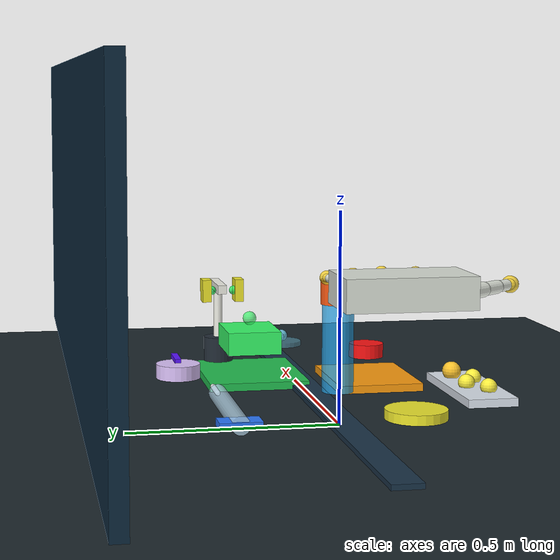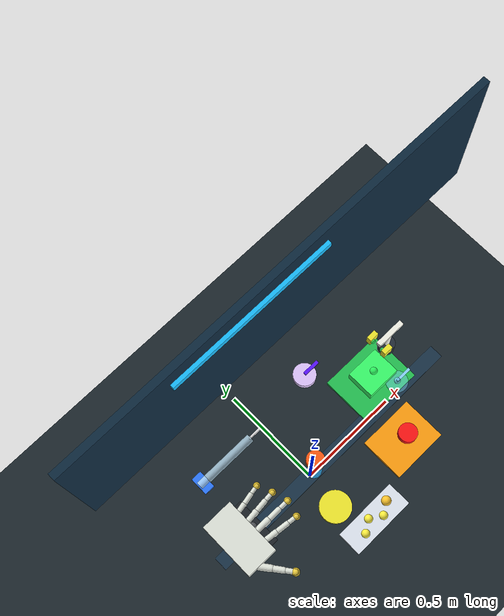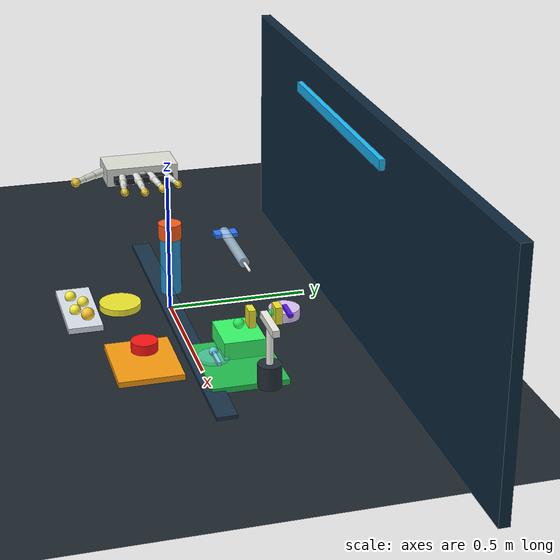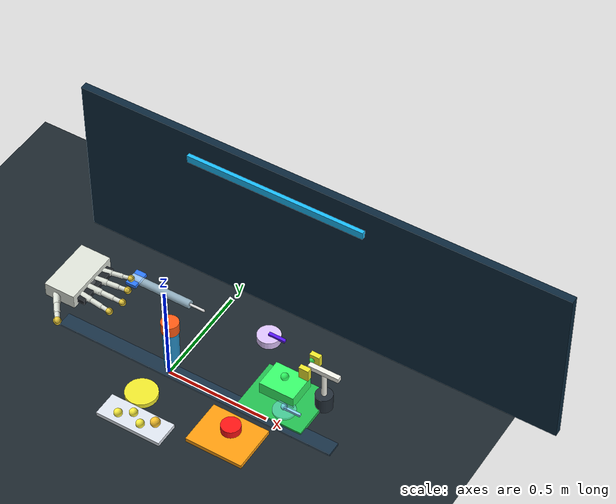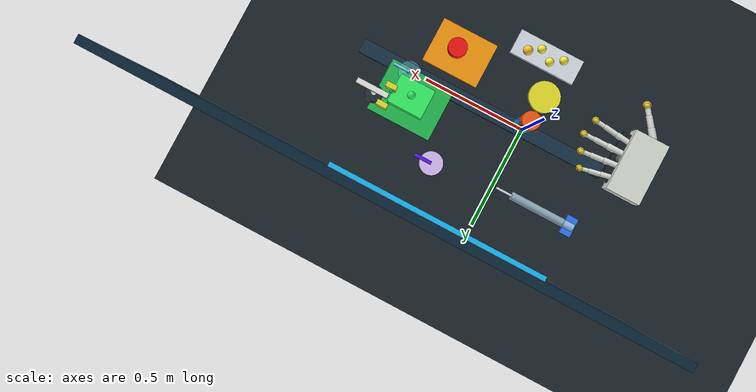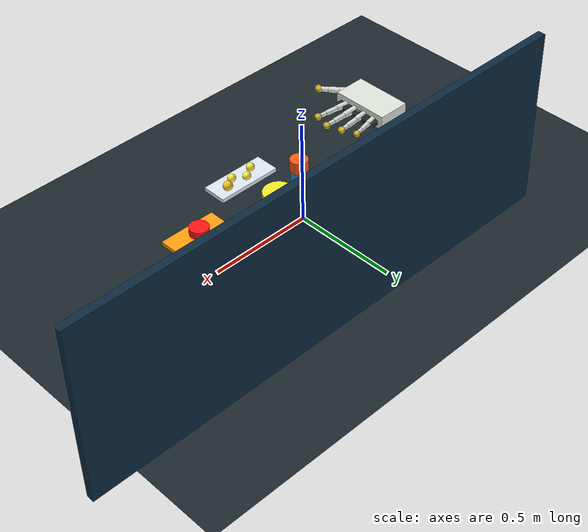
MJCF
<mujoco model="guardian_apothecary_dextriage">
  <compiler angle="radian"/>
  <option timestep="0.002" integrator="implicitfast" gravity="0 0 -9.81"/>
  <visual>
    <global offwidth="1280" offheight="720"/>
    <headlight diffuse="0.55 0.55 0.55" ambient="0.22 0.22 0.22"/>
  </visual>
  <asset>
    <texture name="floor_tex" type="2d" builtin="checker" width="256" height="256" rgb1="0.08 0.11 0.13" rgb2="0.15 0.20 0.23"/>
    <material name="floor_mat" texture="floor_tex" texrepeat="8 8" reflectance="0.18"/>
    <material name="skin" rgba="0.88 0.90 0.86 1"/>
    <material name="joint" rgba="0.12 0.14 0.16 1"/>
    <material name="vial" rgba="0.20 0.72 1.00 0.78"/>
    <material name="cap" rgba="1.00 0.36 0.08 1"/>
    <material name="pod" rgba="0.22 1.00 0.42 1"/>
    <material name="receiver" rgba="0.96 0.96 0.92 1"/>
    <material name="verifier" rgba="0.55 0.85 1.00 1"/>
  </asset>
  <default>
    <geom solref="0.008 1" solimp="0.92 0.98 0.006" friction="1.4 0.08 0.02"/>
    <joint damping="1.6" armature="0.02" limited="true"/>
    <position kp="48" ctrllimited="true"/>
  </default>
  <worldbody>
    <light name="key_light" pos="-1.1 -1.2 2.4" dir="0.45 0.55 -1" diffuse="0.9 0.86 0.78"/>
    <light name="rim_light" pos="0.9 1.0 1.5" dir="-0.5 -0.35 -1" diffuse="0.35 0.55 0.95"/>
    <geom name="floor" type="plane" size="1.4 1.0 0.02" material="floor_mat"/>
    <geom name="backdrop_wall" type="box" pos="0.40 0.58 0.43" size="1.20 0.018 0.42" rgba="0.05 0.16 0.24 1"/>
    <geom name="triage_light_bar" type="box" pos="0.20 0.555 0.72" size="0.44 0.012 0.018" rgba="0.10 0.75 1.00 1"/>
    <geom name="route_line" type="box" pos="0.14 0 0.012" size="0.70 0.035 0.006" rgba="0.10 0.20 0.28 1"/>
    <geom name="sterile_pod_pad" type="box" pos="0.52 0.12 0.018" size="0.16 0.13 0.010" rgba="0.14 0.76 0.32 1"/>
    <geom name="quarantine_pad" type="box" pos="0.42 -0.18 0.018" size="0.14 0.11 0.010" rgba="1.00 0.62 0.06 1"/>
    <geom name="scan_marker" type="cylinder" pos="-0.02 -0.18 0.024" size="0.075 0.012" rgba="0.95 0.92 0.18 1"/>
    <camera name="hero" pos="0.95 -1.05 0.74" xyaxes="0.78 0.63 0 -0.23 0.29 0.93"/>

    <body name="palm" pos="-0.44 -0.02 0.38">
      <freejoint name="palm_root"/>
      <geom name="palm_geom" type="box" size="0.075 0.135 0.034" material="skin"/>
      <geom name="palm_plate" type="box" pos="0.02 0 -0.006" size="0.09 0.11 0.012" material="joint"/>
      <site name="palm_frame" pos="0.075 0 0" size="0.018" rgba="1 1 1 0.25"/>

      <body name="thumb_base" pos="-0.02 -0.13 -0.005" euler="0 0 -0.92">
        <joint name="thumb_abd" type="hinge" axis="0 0 1" range="-1.25 0.85"/>
        <geom name="thumb_base_geom" type="capsule" fromto="0 0 0 0.052 0 0" size="0.016" material="skin"/>
        <body name="thumb_mid" pos="0.052 0 0">
          <joint name="thumb_flex" type="hinge" axis="0 0 1" range="-1.35 0.80"/>
          <geom name="thumb_mid_geom" type="capsule" fromto="0 0 0 0.052 0 0" size="0.014" material="skin"/>
          <body name="thumb_tip_body" pos="0.052 0 0">
            <joint name="thumb_tip_joint" type="hinge" axis="0 0 1" range="-1.15 0.65"/>
            <geom name="thumb_tip_geom" type="capsule" fromto="0 0 0 0.048 0 0" size="0.012" material="skin"/>
            <site name="thumb_tip" pos="0.050 0 0" size="0.018" rgba="1 0.85 0.20 0.85"/>
          </body>
        </body>
      </body>

      <body name="index_base" pos="0.055 -0.075 0" euler="0 0 -0.12">
        <joint name="index_abd" type="hinge" axis="0 0 1" range="-0.65 0.65"/>
        <geom name="index_base_geom" type="capsule" fromto="0 0 0 0.070 0 0" size="0.014" material="skin"/>
        <body name="index_mid" pos="0.070 0 0">
          <joint name="index_flex" type="hinge" axis="0 0 1" range="-1.35 0.55"/>
          <geom name="index_mid_geom" type="capsule" fromto="0 0 0 0.060 0 0" size="0.012" material="skin"/>
          <body name="index_tip_body" pos="0.060 0 0">
            <joint name="index_tip_joint" type="hinge" axis="0 0 1" range="-1.20 0.45"/>
            <geom name="index_tip_geom" type="capsule" fromto="0 0 0 0.047 0 0" size="0.010" material="skin"/>
            <site name="index_tip" pos="0.048 0 0" size="0.016" rgba="1 0.85 0.20 0.85"/>
          </body>
        </body>
      </body>

      <body name="middle_base" pos="0.060 -0.025 0">
        <joint name="middle_abd" type="hinge" axis="0 0 1" range="-0.65 0.65"/>
        <geom name="middle_base_geom" type="capsule" fromto="0 0 0 0.076 0 0" size="0.015" material="skin"/>
        <body name="middle_mid" pos="0.076 0 0">
          <joint name="middle_flex" type="hinge" axis="0 0 1" range="-1.35 0.55"/>
          <geom name="middle_mid_geom" type="capsule" fromto="0 0 0 0.064 0 0" size="0.012" material="skin"/>
          <body name="middle_tip_body" pos="0.064 0 0">
            <joint name="middle_tip_joint" type="hinge" axis="0 0 1" range="-1.20 0.45"/>
            <geom name="middle_tip_geom" type="capsule" fromto="0 0 0 0.050 0 0" size="0.010" material="skin"/>
            <site name="middle_tip" pos="0.050 0 0" size="0.016" rgba="1 0.85 0.20 0.85"/>
          </body>
        </body>
      </body>

      <body name="ring_base" pos="0.057 0.027 0" euler="0 0 0.10">
        <joint name="ring_abd" type="hinge" axis="0 0 1" range="-0.65 0.65"/>
        <geom name="ring_base_geom" type="capsule" fromto="0 0 0 0.068 0 0" size="0.014" material="skin"/>
        <body name="ring_mid" pos="0.068 0 0">
          <joint name="ring_flex" type="hinge" axis="0 0 1" range="-1.35 0.55"/>
          <geom name="ring_mid_geom" type="capsule" fromto="0 0 0 0.058 0 0" size="0.012" material="skin"/>
          <body name="ring_tip_body" pos="0.058 0 0">
            <joint name="ring_tip_joint" type="hinge" axis="0 0 1" range="-1.20 0.45"/>
            <geom name="ring_tip_geom" type="capsule" fromto="0 0 0 0.046 0 0" size="0.010" material="skin"/>
            <site name="ring_tip" pos="0.047 0 0" size="0.016" rgba="1 0.85 0.20 0.85"/>
          </body>
        </body>
      </body>

      <body name="little_base" pos="0.050 0.078 0" euler="0 0 0.20">
        <joint name="little_abd" type="hinge" axis="0 0 1" range="-0.65 0.65"/>
        <geom name="little_base_geom" type="capsule" fromto="0 0 0 0.060 0 0" size="0.013" material="skin"/>
        <body name="little_mid" pos="0.060 0 0">
          <joint name="little_flex" type="hinge" axis="0 0 1" range="-1.35 0.55"/>
          <geom name="little_mid_geom" type="capsule" fromto="0 0 0 0.052 0 0" size="0.011" material="skin"/>
          <body name="little_tip_body" pos="0.052 0 0">
            <joint name="little_tip_joint" type="hinge" axis="0 0 1" range="-1.20 0.45"/>
            <geom name="little_tip_geom" type="capsule" fromto="0 0 0 0.042 0 0" size="0.009" material="skin"/>
            <site name="little_tip" pos="0.043 0 0" size="0.015" rgba="1 0.85 0.20 0.85"/>
          </body>
        </body>
      </body>
    </body>

    <body name="vial" pos="0.02 0 0.18">
      <freejoint name="vial_root"/>
      <geom name="vial_body" type="cylinder" size="0.037 0.105" material="vial" mass="0.09"/>
      <site name="vial_frame" pos="0 0 0.05" size="0.014" rgba="0.1 0.8 1 0.7"/>
    </body>
    <body name="cap" pos="0.02 0 0.31">
      <freejoint name="cap_root"/>
      <geom name="cap_body" type="cylinder" size="0.041 0.028" material="cap" mass="0.025"/>
      <site name="cap_frame" pos="0 0 0" size="0.012" rgba="1 0.35 0.05 0.8"/>
    </body>
    <body name="sterile_pod" pos="0.52 0.12 0.115">
      <geom name="pod_wall" type="box" size="0.085 0.070 0.030" material="pod"/>
      <site name="pod_center" pos="0 0 0.055" size="0.018" rgba="0.2 1 0.4 0.7"/>
    </body>
    <body name="receiver_robot" pos="0.68 0.18 0.055">
      <geom name="receiver_base" type="cylinder" size="0.040 0.040" rgba="0.14 0.18 0.22 1"/>
      <geom name="receiver_post" type="capsule" fromto="0 0 0.02 0 0 0.17" size="0.012" material="receiver"/>
      <body name="receiver_carriage" pos="0 0 0.18">
        <joint name="receiver_carriage_slide" type="slide" axis="-1 0 0" range="0 0.080" damping="9"/>
        <geom name="receiver_crossbar" type="box" size="0.075 0.012 0.012" material="receiver"/>
        <body name="receiver_left_clamp" pos="-0.070 0.044 0">
          <joint name="receiver_left_slide" type="slide" axis="0 -1 0" range="0 0.038" damping="10"/>
          <geom name="receiver_left_pad" type="box" size="0.024 0.012 0.030" rgba="0.95 0.92 0.18 1"/>
          <site name="receiver_touch_left" pos="-0.010 -0.014 0" size="0.012" rgba="0.22 1.00 0.42 0.85"/>
        </body>
        <body name="receiver_right_clamp" pos="-0.070 -0.044 0">
          <joint name="receiver_right_slide" type="slide" axis="0 1 0" range="0 0.038" damping="10"/>
          <geom name="receiver_right_pad" type="box" size="0.024 0.012 0.030" rgba="0.95 0.92 0.18 1"/>
          <site name="receiver_touch_right" pos="-0.010 0.014 0" size="0.012" rgba="0.22 1.00 0.42 0.85"/>
        </body>
      </body>
    </body>
    <body name="verifier_scanner" pos="0.58 0.02 0.090">
      <joint name="verifier_gate_hinge" type="hinge" axis="0 0 1" range="0 1.5708" damping="2"/>
      <geom name="verifier_ring" type="cylinder" size="0.052 0.006" rgba="0.50 0.88 1.00 0.42"/>
      <geom name="verifier_pointer" type="box" pos="0.040 0 0.014" size="0.040 0.006 0.006" material="verifier"/>
      <site name="verifier_scan_site" pos="0 0 0.020" size="0.015" rgba="0.50 0.88 1.00 0.85"/>
    </body>
    <body name="audit_button" pos="0.44 -0.18 0.090">
      <joint name="audit_button_slide" type="slide" axis="0 0 -1" range="0 0.040" damping="8"/>
      <geom name="audit_button_geom" type="cylinder" size="0.045 0.018" rgba="1 0.08 0.08 1"/>
    </body>
    <body name="blister_pack" pos="0.06 -0.34 0.060">
      <geom name="blister_tray" type="box" size="0.16 0.060 0.010" rgba="0.88 0.91 0.95 1"/>
      <geom name="pill_A" type="sphere" pos="-0.075 -0.018 0.020" size="0.020" rgba="1.0 0.95 0.25 1"/>
      <geom name="pill_B" type="sphere" pos="-0.020 0.018 0.020" size="0.020" rgba="1.0 0.95 0.25 1"/>
      <geom name="pill_C" type="sphere" pos="0.038 -0.018 0.020" size="0.020" rgba="1.0 0.95 0.25 1"/>
      <body name="blister_press_pad" pos="0.092 0.018 0.026">
        <joint name="blister_press_slide" type="slide" axis="0 0 -1" range="0 0.035" damping="10"/>
        <geom name="blister_press_geom" type="sphere" size="0.023" rgba="1.0 0.78 0.18 1"/>
      </body>
    </body>
    <body name="syringe" pos="-0.24 0.30 0.105">
      <geom name="syringe_barrel" type="cylinder" euler="0 1.5708 0" size="0.020 0.155" rgba="0.78 0.92 1.0 0.75"/>
      <geom name="syringe_tip" type="capsule" fromto="0.155 0 0 0.225 0 0" size="0.006" rgba="0.9 0.9 0.9 1"/>
      <body name="syringe_plunger" pos="-0.135 0 0">
        <joint name="syringe_plunger_slide" type="slide" axis="1 0 0" range="0 0.060" damping="9"/>
        <geom name="syringe_plunger_geom" type="box" size="0.026 0.045 0.008" rgba="0.18 0.48 1.0 1"/>
      </body>
    </body>
    <body name="dose_dial" pos="0.30 0.34 0.080">
      <joint name="dose_dial_hinge" type="hinge" axis="0 0 1" range="0 1.5708" damping="2"/>
      <geom name="dose_dial_knob" type="cylinder" size="0.055 0.018" rgba="0.88 0.78 1.0 1"/>
      <geom name="dose_dial_pointer" type="box" pos="0.042 0 0.022" size="0.042 0.008 0.006" rgba="0.36 0.08 1.0 1"/>
    </body>
  </worldbody>
  <actuator>
    <position name="thumb_abd_act" joint="thumb_abd" ctrlrange="-1.25 0.85"/>
    <position name="thumb_flex_act" joint="thumb_flex" ctrlrange="-1.35 0.80"/>
    <position name="thumb_tip_act" joint="thumb_tip_joint" ctrlrange="-1.15 0.65"/>
    <position name="index_abd_act" joint="index_abd" ctrlrange="-0.65 0.65"/>
    <position name="index_flex_act" joint="index_flex" ctrlrange="-1.35 0.55"/>
    <position name="index_tip_act" joint="index_tip_joint" ctrlrange="-1.20 0.45"/>
    <position name="middle_abd_act" joint="middle_abd" ctrlrange="-0.65 0.65"/>
    <position name="middle_flex_act" joint="middle_flex" ctrlrange="-1.35 0.55"/>
    <position name="middle_tip_act" joint="middle_tip_joint" ctrlrange="-1.20 0.45"/>
    <position name="ring_abd_act" joint="ring_abd" ctrlrange="-0.65 0.65"/>
    <position name="ring_flex_act" joint="ring_flex" ctrlrange="-1.35 0.55"/>
    <position name="ring_tip_act" joint="ring_tip_joint" ctrlrange="-1.20 0.45"/>
    <position name="little_abd_act" joint="little_abd" ctrlrange="-0.65 0.65"/>
    <position name="little_flex_act" joint="little_flex" ctrlrange="-1.35 0.55"/>
    <position name="little_tip_act" joint="little_tip_joint" ctrlrange="-1.20 0.45"/>
    <position name="audit_button_act" joint="audit_button_slide" ctrlrange="0 0.040"/>
    <position name="blister_press_act" joint="blister_press_slide" ctrlrange="0 0.035"/>
    <position name="syringe_plunger_act" joint="syringe_plunger_slide" ctrlrange="0 0.060"/>
    <position name="dose_dial_act" joint="dose_dial_hinge" ctrlrange="0 1.5708"/>
    <position name="receiver_carriage_act" joint="receiver_carriage_slide" ctrlrange="0 0.080"/>
    <position name="receiver_left_act" joint="receiver_left_slide" ctrlrange="0 0.038"/>
    <position name="receiver_right_act" joint="receiver_right_slide" ctrlrange="0 0.038"/>
    <position name="verifier_gate_act" joint="verifier_gate_hinge" ctrlrange="0 1.5708"/>
  </actuator>
  <sensor>
    <touch name="touch_thumb" site="thumb_tip"/>
    <touch name="touch_index" site="index_tip"/>
    <touch name="touch_middle" site="middle_tip"/>
    <touch name="touch_ring" site="ring_tip"/>
    <touch name="touch_little" site="little_tip"/>
    <touch name="receiver_touch_left" site="receiver_touch_left"/>
    <touch name="receiver_touch_right" site="receiver_touch_right"/>
    <framepos name="palm_pos" objtype="site" objname="palm_frame"/>
    <framepos name="vial_pos" objtype="site" objname="vial_frame"/>
    <framepos name="cap_pos" objtype="site" objname="cap_frame"/>
    <framepos name="verifier_scan_pos" objtype="site" objname="verifier_scan_site"/>
    <jointpos name="receiver_carriage_depth" joint="receiver_carriage_slide"/>
    <jointpos name="receiver_left_depth" joint="receiver_left_slide"/>
    <jointpos name="receiver_right_depth" joint="receiver_right_slide"/>
    <jointpos name="verifier_gate_angle" joint="verifier_gate_hinge"/>
    <jointpos name="audit_button_depth" joint="audit_button_slide"/>
    <jointpos name="blister_press_depth" joint="blister_press_slide"/>
    <jointpos name="syringe_plunger_depth" joint="syringe_plunger_slide"/>
    <jointpos name="dose_dial_angle" joint="dose_dial_hinge"/>
  </sensor>
</mujoco>
